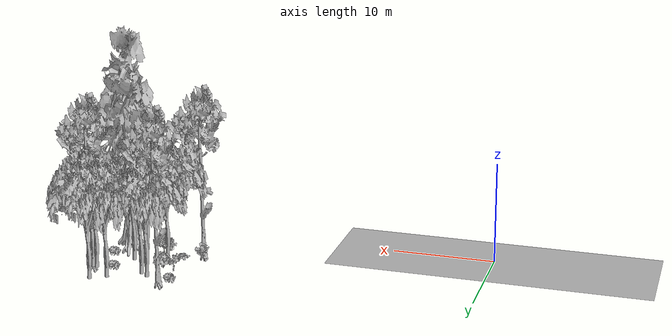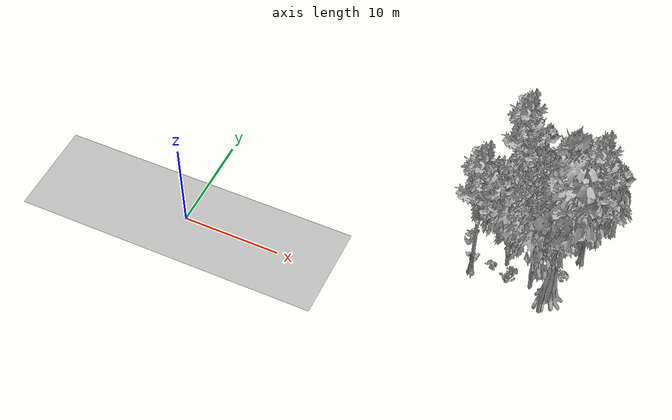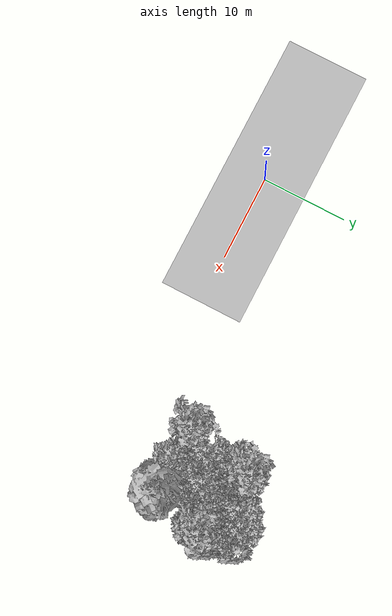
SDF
<sdf version="1.7">
 <world name="default">
  <model name="ground_plane">
   <static>1</static>
   <link name="link">
    <collision name="collision">
     <geometry><plane><normal>0 0 1</normal><size>100 100</size></plane></geometry>
     <surface><contact><ode><min_depth>0.01</min_depth><max_vel>0</max_vel></ode></contact></surface>
    </collision>
    <visual name="grass">
     <cast_shadows>0</cast_shadows>
     <geometry>
      <mesh>
       <scale>0.5814285714285714 0.18142857142857144 0.1</scale>
       <uri>file://grass_plane/meshes/grass_plane.dae</uri>
      </mesh>
     </geometry>
    </visual>
   </link>
  </model>
  <model name="Tree 5">
   <static>1</static>
   <pose>35.713742004815415 14.597257240892898 0 1.57079 -0 0</pose>
   <link name="link">
    <collision name="collision">
     <geometry><mesh><scale>3.5 5 3.5</scale><uri>model://tree_2/meshes/tree_2.obj</uri></mesh></geometry>
    </collision>
    <visual name="visual">
     <geometry><mesh><scale>3.5 5 3.5</scale><uri>model://tree_2/meshes/tree_2.obj</uri></mesh></geometry>
    </visual>
   </link>
  </model>
  <model name="Tree 27">
   <static>1</static>
   <pose>34.32430059708736 13.774492211939243 0 1.57079 -0 0</pose>
   <link name="link">
    <collision name="collision">
     <geometry><mesh><scale>3.5 5 3.5</scale><uri>model://tree_2/meshes/tree_2.obj</uri></mesh></geometry>
    </collision>
    <visual name="visual">
     <geometry><mesh><scale>3.5 5 3.5</scale><uri>model://tree_2/meshes/tree_2.obj</uri></mesh></geometry>
    </visual>
   </link>
  </model>
  <model name="Tree 30">
   <static>1</static>
   <pose>33.460468468772774 6.393462766625621 0 1.57079 -0 0</pose>
   <link name="link">
    <collision name="collision">
     <geometry><mesh><scale>3.5 5 3.5</scale><uri>model://tree_2/meshes/tree_2.obj</uri></mesh></geometry>
    </collision>
    <visual name="visual">
     <geometry><mesh><scale>3.5 5 3.5</scale><uri>model://tree_2/meshes/tree_2.obj</uri></mesh></geometry>
    </visual>
   </link>
  </model>
  <model name="Tree 54">
   <static>1</static>
   <pose>30.701110297013685 12.680997859279938 0 1.57079 -0 0</pose>
   <link name="link">
    <collision name="collision">
     <geometry><mesh><scale>3.5 5 3.5</scale><uri>model://tree_2/meshes/tree_2.obj</uri></mesh></geometry>
    </collision>
    <visual name="visual">
     <geometry><mesh><scale>3.5 5 3.5</scale><uri>model://tree_2/meshes/tree_2.obj</uri></mesh></geometry>
    </visual>
   </link>
  </model>
  <model name="Tree 63">
   <static>1</static>
   <pose>29.299920669074154 13.504403487405273 0 1.57079 -0 0</pose>
   <link name="link">
    <collision name="collision">
     <geometry><mesh><scale>3.5 5 3.5</scale><uri>model://tree_9/meshes/tree_9.obj</uri></mesh></geometry>
    </collision>
    <visual name="visual">
     <geometry><mesh><scale>3.5 5 3.5</scale><uri>model://tree_9/meshes/tree_9.obj</uri></mesh></geometry>
    </visual>
   </link>
  </model>
  <model name="Tree 80">
   <static>1</static>
   <pose>35.42581093637574 5.853035949410177 0 1.57079 -0 0</pose>
   <link name="link">
    <collision name="collision">
     <geometry><mesh><scale>3.5 5 3.5</scale><uri>model://tree_4/meshes/tree_4.obj</uri></mesh></geometry>
    </collision>
    <visual name="visual">
     <geometry><mesh><scale>3.5 5 3.5</scale><uri>model://tree_4/meshes/tree_4.obj</uri></mesh></geometry>
    </visual>
   </link>
  </model>
  <model name="Tree 174">
   <static>1</static>
   <pose>33.57707216876044 9.153059978062057 0 1.57079 -0 0</pose>
   <link name="link">
    <collision name="collision">
     <geometry><mesh><scale>3.5 5 3.5</scale><uri>model://tree_2/meshes/tree_2.obj</uri></mesh></geometry>
    </collision>
    <visual name="visual">
     <geometry><mesh><scale>3.5 5 3.5</scale><uri>model://tree_2/meshes/tree_2.obj</uri></mesh></geometry>
    </visual>
   </link>
  </model>
  <model name="Tree 177">
   <static>1</static>
   <pose>36.948066625632194 11.459503211473415 0 1.57079 -0 0</pose>
   <link name="link">
    <collision name="collision">
     <geometry><mesh><scale>3.5 5 3.5</scale><uri>model://tree_9/meshes/tree_9.obj</uri></mesh></geometry>
    </collision>
    <visual name="visual">
     <geometry><mesh><scale>3.5 5 3.5</scale><uri>model://tree_9/meshes/tree_9.obj</uri></mesh></geometry>
    </visual>
   </link>
  </model>
  <model name="Tree 215">
   <static>1</static>
   <pose>27.74576733869239 5.967385343276263 0 1.57079 -0 0</pose>
   <link name="link">
    <collision name="collision">
     <geometry><mesh><scale>3.5 5 3.5</scale><uri>model://tree_9/meshes/tree_9.obj</uri></mesh></geometry>
    </collision>
    <visual name="visual">
     <geometry><mesh><scale>3.5 5 3.5</scale><uri>model://tree_9/meshes/tree_9.obj</uri></mesh></geometry>
    </visual>
   </link>
  </model>
  <model name="Tree 230">
   <static>1</static>
   <pose>36.71298337206018 11.766704328070155 0 1.57079 -0 0</pose>
   <link name="link">
    <collision name="collision">
     <geometry><mesh><scale>3.5 5 3.5</scale><uri>model://tree_2/meshes/tree_2.obj</uri></mesh></geometry>
    </collision>
    <visual name="visual">
     <geometry><mesh><scale>3.5 5 3.5</scale><uri>model://tree_2/meshes/tree_2.obj</uri></mesh></geometry>
    </visual>
   </link>
  </model>
  <model name="Tree 348">
   <static>1</static>
   <pose>36.2482303639287 11.907074672424073 0 1.57079 -0 0</pose>
   <link name="link">
    <collision name="collision">
     <geometry><mesh><scale>3.5 5 3.5</scale><uri>model://tree_2/meshes/tree_2.obj</uri></mesh></geometry>
    </collision>
    <visual name="visual">
     <geometry><mesh><scale>3.5 5 3.5</scale><uri>model://tree_2/meshes/tree_2.obj</uri></mesh></geometry>
    </visual>
   </link>
  </model>
  <model name="Tree 406">
   <static>1</static>
   <pose>30.572306535707398 8.034626522590262 0 1.57079 -0 0</pose>
   <link name="link">
    <collision name="collision">
     <geometry><mesh><scale>3.5 5 3.5</scale><uri>model://tree_2/meshes/tree_2.obj</uri></mesh></geometry>
    </collision>
    <visual name="visual">
     <geometry><mesh><scale>3.5 5 3.5</scale><uri>model://tree_2/meshes/tree_2.obj</uri></mesh></geometry>
    </visual>
   </link>
  </model>
  <model name="Tree 439">
   <static>1</static>
   <pose>31.489615092102397 12.135584730548 0 1.57079 -0 0</pose>
   <link name="link">
    <collision name="collision">
     <geometry><mesh><scale>3.5 5 3.5</scale><uri>model://tree_2/meshes/tree_2.obj</uri></mesh></geometry>
    </collision>
    <visual name="visual">
     <geometry><mesh><scale>3.5 5 3.5</scale><uri>model://tree_2/meshes/tree_2.obj</uri></mesh></geometry>
    </visual>
   </link>
  </model>
  <model name="Bush 8">
   <static>1</static>
   <pose>31.273892474941633 6.057559251300937 0 1.57079 -0 0</pose>
   <link name="link">
    <collision name="collision">
     <geometry><mesh><scale>2 2 2</scale><uri>model://bush_4/meshes/bush_4.obj</uri></mesh></geometry>
     <surface><contact><collide_without_contact>false</collide_without_contact></contact></surface>
    </collision>
    <visual name="visual">
     <geometry><mesh><scale>2 2 2</scale><uri>model://bush_4/meshes/bush_4.obj</uri></mesh></geometry>
    </visual>
   </link>
  </model>
  <model name="Bush 52">
   <static>1</static>
   <pose>34.59119516227767 12.017588441045845 0 1.57079 -0 0</pose>
   <link name="link">
    <collision name="collision">
     <geometry><mesh><scale>2 2 2</scale><uri>model://bush_3/meshes/bush_3.obj</uri></mesh></geometry>
     <surface><contact><collide_without_contact>false</collide_without_contact></contact></surface>
    </collision>
    <visual name="visual">
     <geometry><mesh><scale>2 2 2</scale><uri>model://bush_3/meshes/bush_3.obj</uri></mesh></geometry>
    </visual>
   </link>
  </model>
  <model name="Bush 82">
   <static>1</static>
   <pose>29.35037549345782 7.332025404929652 0 1.57079 -0 0</pose>
   <link name="link">
    <collision name="collision">
     <geometry><mesh><scale>2 2 2</scale><uri>model://bush_2/meshes/bush_2.obj</uri></mesh></geometry>
     <surface><contact><collide_without_contact>false</collide_without_contact></contact></surface>
    </collision>
    <visual name="visual">
     <geometry><mesh><scale>2 2 2</scale><uri>model://bush_2/meshes/bush_2.obj</uri></mesh></geometry>
    </visual>
   </link>
  </model>
  <model name="Bush 89">
   <static>1</static>
   <pose>36.04409822176612 8.759783481543206 0 1.57079 -0 0</pose>
   <link name="link">
    <collision name="collision">
     <geometry><mesh><scale>2 2 2</scale><uri>model://bush_3/meshes/bush_3.obj</uri></mesh></geometry>
     <surface><contact><collide_without_contact>false</collide_without_contact></contact></surface>
    </collision>
    <visual name="visual">
     <geometry><mesh><scale>2 2 2</scale><uri>model://bush_3/meshes/bush_3.obj</uri></mesh></geometry>
    </visual>
   </link>
  </model>
  <model name="Bush 196">
   <static>1</static>
   <pose>31.621936297078378 6.858665554119714 0 1.57079 -0 0</pose>
   <link name="link">
    <collision name="collision">
     <geometry><mesh><scale>2 2 2</scale><uri>model://bush_5/meshes/bush_5.obj</uri></mesh></geometry>
     <surface><contact><collide_without_contact>false</collide_without_contact></contact></surface>
    </collision>
    <visual name="visual">
     <geometry><mesh><scale>2 2 2</scale><uri>model://bush_5/meshes/bush_5.obj</uri></mesh></geometry>
    </visual>
   </link>
  </model>
  <model name="Bush 202">
   <static>1</static>
   <pose>28.27445060427698 13.415482302514977 0 1.57079 -0 0</pose>
   <link name="link">
    <collision name="collision">
     <geometry><mesh><scale>2 2 2</scale><uri>model://bush_3/meshes/bush_3.obj</uri></mesh></geometry>
     <surface><contact><collide_without_contact>false</collide_without_contact></contact></surface>
    </collision>
    <visual name="visual">
     <geometry><mesh><scale>2 2 2</scale><uri>model://bush_3/meshes/bush_3.obj</uri></mesh></geometry>
    </visual>
   </link>
  </model>
  <model name="Bush 223">
   <static>1</static>
   <pose>30.180486705850043 10.30178163728089 0 1.57079 -0 0</pose>
   <link name="link">
    <collision name="collision">
     <geometry><mesh><scale>2 2 2</scale><uri>model://bush_1/meshes/bush_1.obj</uri></mesh></geometry>
     <surface><contact><collide_without_contact>false</collide_without_contact></contact></surface>
    </collision>
    <visual name="visual">
     <geometry><mesh><scale>2 2 2</scale><uri>model://bush_1/meshes/bush_1.obj</uri></mesh></geometry>
    </visual>
   </link>
  </model>
  <model name="Bush 237">
   <static>1</static>
   <pose>27.61618164215058 6.970982701719965 0 1.57079 -0 0</pose>
   <link name="link">
    <collision name="collision">
     <geometry><mesh><scale>2 2 2</scale><uri>model://bush_0/meshes/bush_0.obj</uri></mesh></geometry>
     <surface><contact><collide_without_contact>false</collide_without_contact></contact></surface>
    </collision>
    <visual name="visual">
     <geometry><mesh><scale>2 2 2</scale><uri>model://bush_0/meshes/bush_0.obj</uri></mesh></geometry>
    </visual>
   </link>
  </model>
  <model name="Bush 322">
   <static>1</static>
   <pose>28.95282702970745 10.74686162605979 0 1.57079 -0 0</pose>
   <link name="link">
    <collision name="collision">
     <geometry><mesh><scale>2 2 2</scale><uri>model://bush_5/meshes/bush_5.obj</uri></mesh></geometry>
     <surface><contact><collide_without_contact>false</collide_without_contact></contact></surface>
    </collision>
    <visual name="visual">
     <geometry><mesh><scale>2 2 2</scale><uri>model://bush_5/meshes/bush_5.obj</uri></mesh></geometry>
    </visual>
   </link>
  </model>
 </world>
</sdf>
